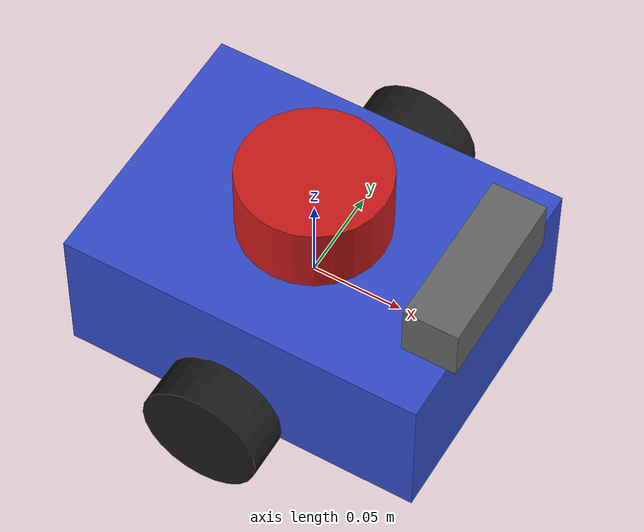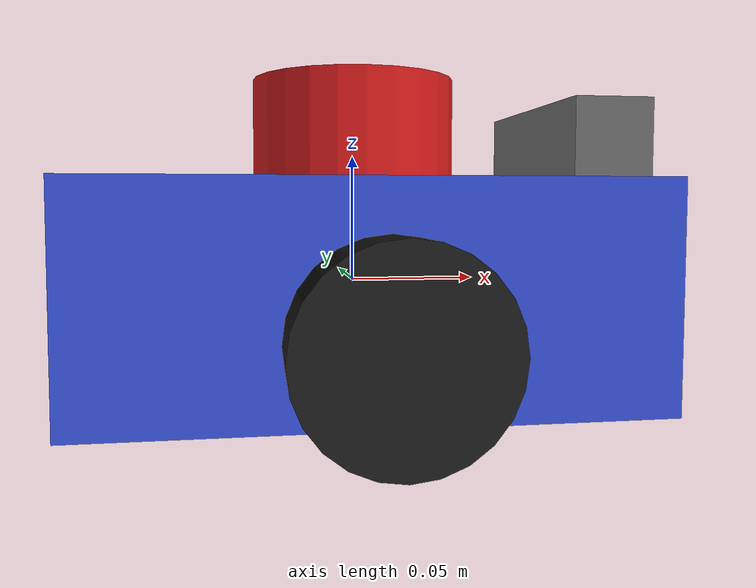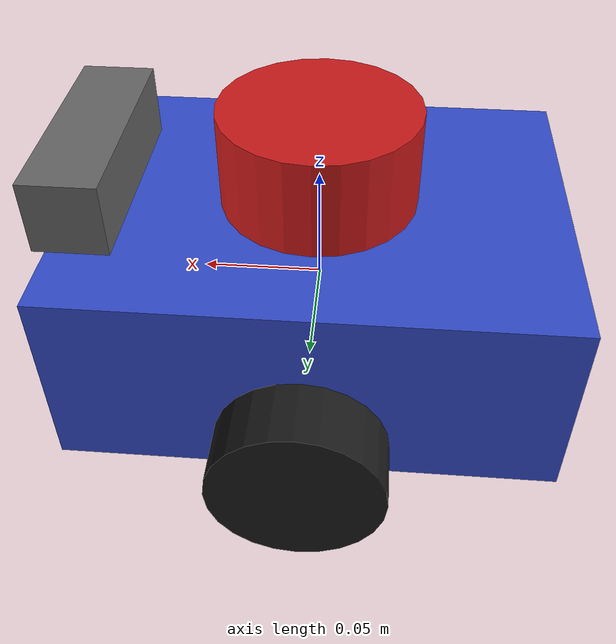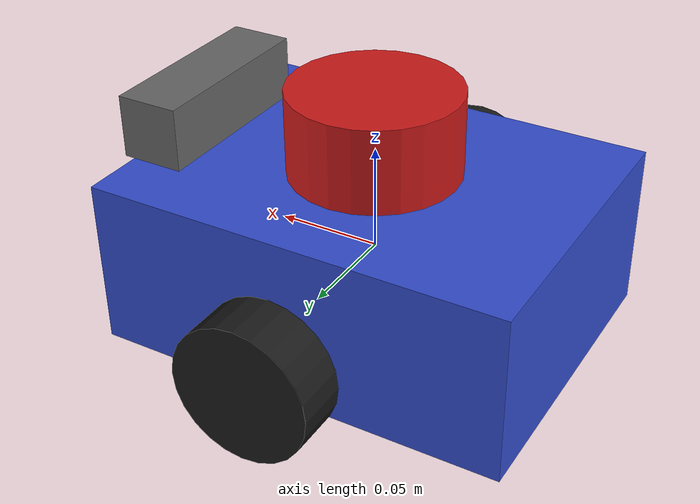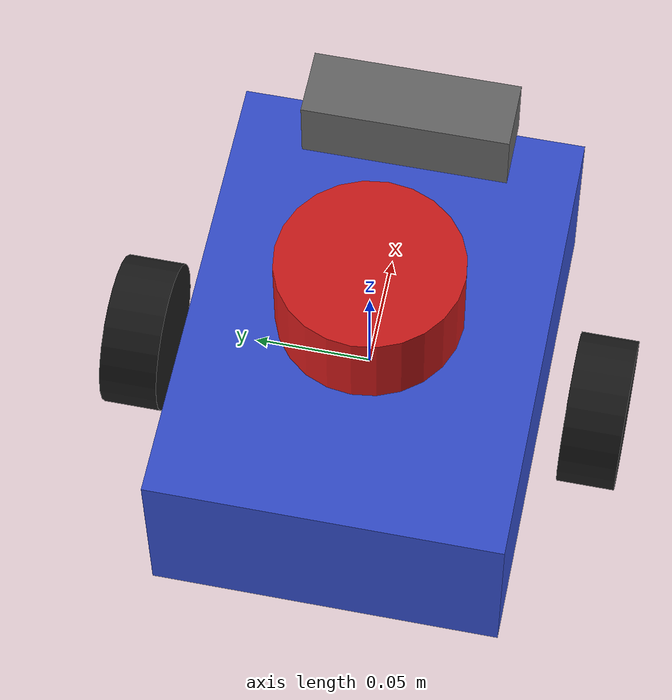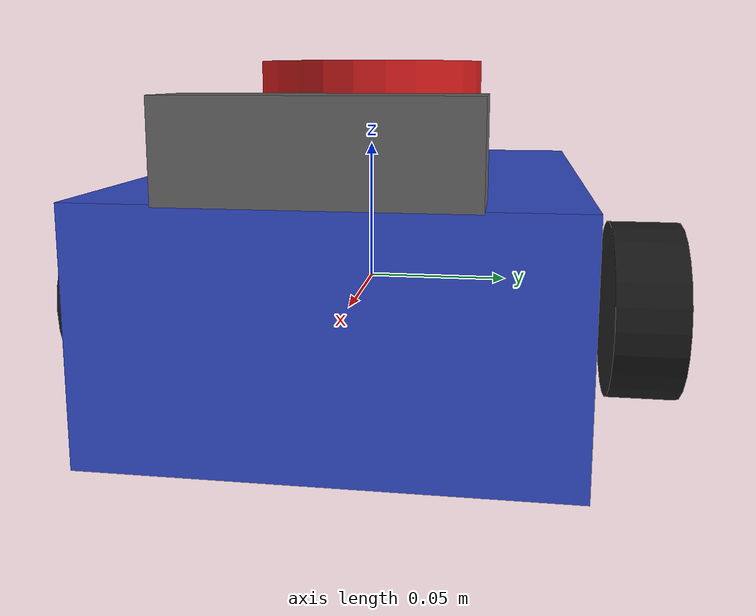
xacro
<?xml version="1.0"?>
<robot name="self_docking_robot" xmlns:xacro="http://www.ros.org/wiki/xacro">

  <xacro:property name="base_length"   value="0.20"/>
  <xacro:property name="base_width"    value="0.15"/>
  <xacro:property name="base_height"   value="0.08"/>
  <xacro:property name="wheel_radius"  value="0.0325"/>
  <xacro:property name="wheel_width"   value="0.025"/>
  <xacro:property name="wheel_sep"     value="0.20"/>

  <!-- Base link -->
  <link name="base_link">
    <visual>
      <geometry><box size="${base_length} ${base_width} ${base_height}"/></geometry>
      <material name="blue"><color rgba="0.2 0.3 0.8 1"/></material>
    </visual>
    <collision>
      <geometry><box size="${base_length} ${base_width} ${base_height}"/></geometry>
    </collision>
    <inertial>
      <mass value="1.5"/>
      <inertia ixx="0.005" iyy="0.007" izz="0.010" ixy="0" ixz="0" iyz="0"/>
    </inertial>
  </link>

  <!-- Left wheel -->
  <xacro:macro name="wheel" params="name y_offset">
    <link name="${name}_wheel">
      <visual>
        <geometry><cylinder radius="${wheel_radius}" length="${wheel_width}"/></geometry>
        <material name="black"><color rgba="0.1 0.1 0.1 1"/></material>
      </visual>
      <collision>
        <geometry><cylinder radius="${wheel_radius}" length="${wheel_width}"/></geometry>
      </collision>
      <inertial>
        <mass value="0.15"/>
        <inertia ixx="0.0001" iyy="0.0001" izz="0.0002" ixy="0" ixz="0" iyz="0"/>
      </inertial>
    </link>
    <joint name="${name}_wheel_joint" type="continuous">
      <parent link="base_link"/>
      <child link="${name}_wheel"/>
      <origin xyz="0 ${y_offset} -0.01" rpy="${pi/2} 0 0"/>
      <axis xyz="0 0 1"/>
    </joint>
  </xacro:macro>

  <xacro:wheel name="left"  y_offset="${ wheel_sep/2}"/>
  <xacro:wheel name="right" y_offset="${-wheel_sep/2}"/>

  <!-- Caster wheel -->
  <link name="caster_wheel">
    <visual>
      <geometry><sphere radius="0.02"/></geometry>
      <material name="grey"><color rgba="0.5 0.5 0.5 1"/></material>
    </visual>
    <collision><geometry><sphere radius="0.02"/></geometry></collision>
    <inertial><mass value="0.05"/>
      <inertia ixx="0.00001" iyy="0.00001" izz="0.00001" ixy="0" ixz="0" iyz="0"/>
    </inertial>
  </link>
  <joint name="caster_joint" type="fixed">
    <parent link="base_link"/><child link="caster_wheel"/>
    <origin xyz="${-base_length/2 + 0.02} 0 ${-wheel_radius}"/>
  </joint>

  <!-- Camera -->
  <link name="camera_link">
    <visual><geometry><box size="0.03 0.09 0.03"/></geometry>
      <material name="grey"><color rgba="0.4 0.4 0.4 1"/></material>
    </visual>
  </link>
  <joint name="camera_joint" type="fixed">
    <parent link="base_link"/><child link="camera_link"/>
    <origin xyz="${base_length/2 - 0.01} 0 ${base_height/2 + 0.015}"/>
  </joint>

  <!-- Laser (lidar) -->
  <link name="laser_link">
    <visual><geometry><cylinder radius="0.04" length="0.04"/></geometry>
      <material name="red"><color rgba="0.8 0.1 0.1 1"/></material>
    </visual>
  </link>
  <joint name="laser_joint" type="fixed">
    <parent link="base_link"/><child link="laser_link"/>
    <origin xyz="0 0 ${base_height/2 + 0.02}"/>
  </joint>

  <!-- ros2_control hardware interface -->
  <ros2_control name="GazeboSystem" type="system">
    <hardware>
      <plugin>gazebo_ros2_control/GazeboSystem</plugin>
    </hardware>
    <joint name="left_wheel_joint">
      <command_interface name="velocity"/>
      <state_interface name="velocity"/>
      <state_interface name="position"/>
    </joint>
    <joint name="right_wheel_joint">
      <command_interface name="velocity"/>
      <state_interface name="velocity"/>
      <state_interface name="position"/>
    </joint>
  </ros2_control>

  <!-- Gazebo plugins -->
  <gazebo>
    <plugin name="gazebo_ros2_control" filename="libgazebo_ros2_control.so">
      <parameters>$(find robot_bringup)/config/ros2_controllers.yaml</parameters>
    </plugin>
  </gazebo>
  <gazebo reference="laser_link">
    <sensor name="laser" type="ray">
      <pose>0 0 0 0 0 0</pose>
      <ray>
        <scan><horizontal><samples>360</samples><min_angle>-3.14159</min_angle><max_angle>3.14159</max_angle></horizontal></scan>
        <range><min>0.1</min><max>12.0</max></range>
      </ray>
      <update_rate>10</update_rate>
      <plugin name="laser_plugin" filename="libgazebo_ros_ray_sensor.so">
        <ros><remapping>~/out:=scan</remapping></ros>
        <output_type>sensor_msgs/LaserScan</output_type>
        <frame_name>laser_link</frame_name>
      </plugin>
    </sensor>
  </gazebo>
</robot>
